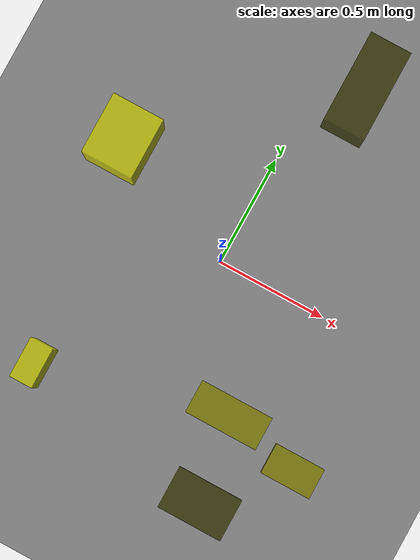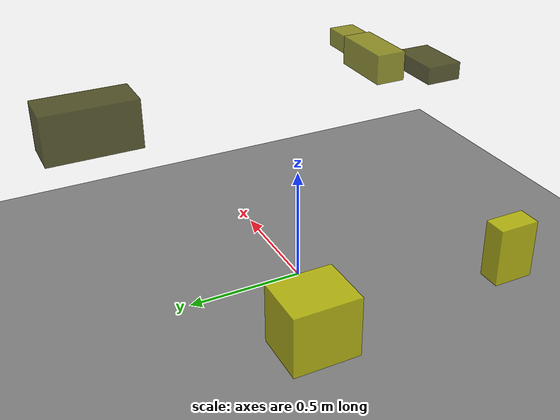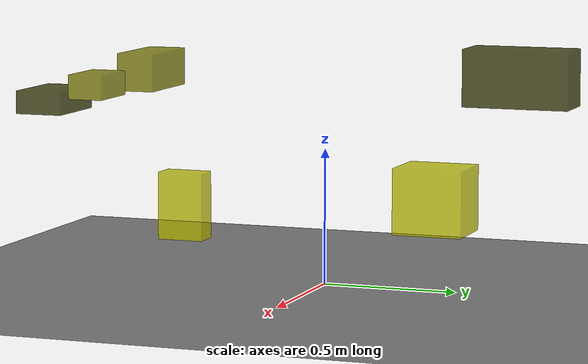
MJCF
<?xml version="1.0"?>
<mujoco model="obstacle_scene">
  <compiler angle="radian" coordinate="local"/>
  <option timestep="0.001" gravity="0 0 -9.81"/>

  <asset>
    <material name="obstacle_mat" rgba="0.8 0.8 0.0 0.8"/>
    <material name="ground_mat" rgba="0.5 0.5 0.5 1"/>
  </asset>

  <worldbody>
    <!-- Ground plane -->
    <geom name="ground" type="plane" size="3 3 0.1" material="ground_mat"/>

    <!-- Obstacles -->
    <body name="obstacle_0" pos="0.191821 0.787470 0.806929">
      <geom name="obs_0" type="box" size="0.085964 0.188000 0.100517" rgba="0.2 0.2 0.0 0.8"/>
    </body>
    <body name="obstacle_1" pos="0.639585 -0.618154 0.775897">
      <geom name="obs_1" type="box" size="0.102245 0.061929 0.042557" rgba="0.5 0.5 0.0 0.8"/>
    </body>
    <body name="obstacle_2" pos="-0.589271 0.239343 0.244049">
      <geom name="obs_2" type="box" size="0.116007 0.136960 0.128131" rgba="0.8 0.8 0.0 0.8"/>
    </body>
    <body name="obstacle_3" pos="0.392822 -0.899553 0.688965">
      <geom name="obs_3" type="box" size="0.135651 0.086192 0.041327" rgba="0.2 0.2 0.0 0.8"/>
    </body>
    <body name="obstacle_4" pos="0.325279 -0.547091 0.804731">
      <geom name="obs_4" type="box" size="0.149200 0.067283 0.066374" rgba="0.5 0.5 0.0 0.8"/>
    </body>
    <body name="obstacle_5" pos="-0.472989 -0.752820 0.187815">
      <geom name="obs_5" type="box" size="0.051456 0.090739 0.132390" rgba="0.8 0.8 0.0 0.8"/>
    </body>
  </worldbody>
</mujoco>
